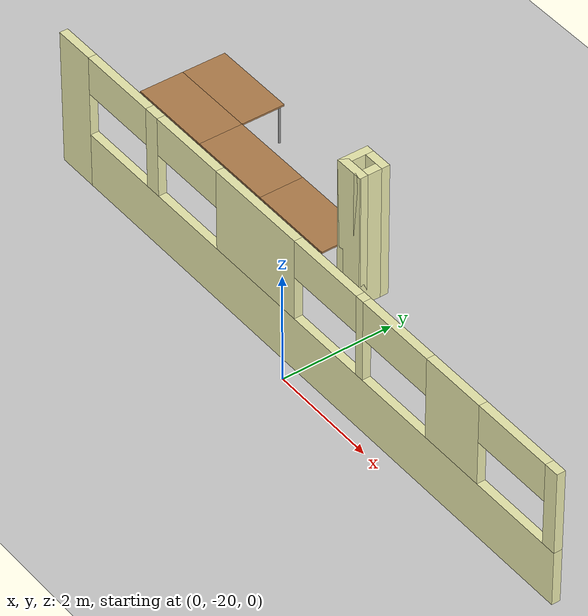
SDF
<sdf version="1.6">
 <world name="default">
  <model name="ground_plane">
   <static>1</static>
   <link name="link">
    <collision name="collision">
     <geometry><plane><normal>0 0 1</normal><size>100 100</size></plane></geometry>
     <surface><friction><ode><mu>100</mu><mu2>50</mu2></ode></friction></surface>
    </collision>
    <visual name="visual">
     <cast_shadows>0</cast_shadows>
     <geometry><plane><normal>0 0 1</normal><size>100 100</size></plane></geometry>
     <material>
      <script><uri>file://media/materials/scripts/gazebo.material</uri><name>Gazebo/Grey</name></script>
     </material>
    </visual>
   </link>
  </model>
  <model name="Building">
   <link name="Wall_0">
    <pose>0 -19.6636 0 0 -0 0</pose>
    <visual name="Wall_0_Visual_0">
     <pose>-5.69408 0 1.25 0 -0 0</pose>
     <geometry><box><size>0.761843 0.15 2.5</size></box></geometry>
     <material>
      <script><uri>file://media/materials/scripts/gazebo.material</uri><name>Gazebo/Grey</name></script>
      <ambient>0.92 0.92 0.68 1</ambient>
     </material>
     <meta><layer>0</layer></meta>
    </visual>
    <collision name="Wall_0_Collision_0">
     <geometry><box><size>0.761843 0.15 2.5</size></box></geometry>
     <pose>-5.69408 0 1.25 0 -0 0</pose>
    </collision>
    <visual name="Wall_0_Visual_1">
     <pose>0.380922 0 0.5 0 -0 0</pose>
     <geometry><box><size>11.3882 0.15 1</size></box></geometry>
     <material>
      <script><uri>file://media/materials/scripts/gazebo.material</uri><name>Gazebo/Grey</name></script>
      <ambient>0.92 0.92 0.68 1</ambient>
     </material>
     <meta><layer>0</layer></meta>
    </visual>
    <collision name="Wall_0_Collision_1">
     <geometry><box><size>11.3882 0.15 1</size></box></geometry>
     <pose>0.380922 0 0.5 0 -0 0</pose>
    </collision>
    <visual name="Wall_0_Visual_2">
     <pose>-3.66593 0 1.75 0 -0 0</pose>
     <geometry><box><size>0.294453 0.15 1.5</size></box></geometry>
     <material>
      <script><uri>file://media/materials/scripts/gazebo.material</uri><name>Gazebo/Grey</name></script>
      <ambient>0.92 0.92 0.68 1</ambient>
     </material>
     <meta><layer>0</layer></meta>
    </visual>
    <collision name="Wall_0_Collision_2">
     <geometry><box><size>0.294453 0.15 1.5</size></box></geometry>
     <pose>-3.66593 0 1.75 0 -0 0</pose>
    </collision>
    <visual name="Wall_0_Visual_3">
     <pose>-1.044 0 1.75 0 -0 0</pose>
     <geometry><box><size>1.94941 0.15 1.5</size></box></geometry>
     <material>
      <script><uri>file://media/materials/scripts/gazebo.material</uri><name>Gazebo/Grey</name></script>
      <ambient>0.92 0.92 0.68 1</ambient>
     </material>
     <meta><layer>0</layer></meta>
    </visual>
    <collision name="Wall_0_Collision_3">
     <geometry><box><size>1.94941 0.15 1.5</size></box></geometry>
     <pose>-1.044 0 1.75 0 -0 0</pose>
    </collision>
    <visual name="Wall_0_Visual_4">
     <pose>1.51332 0 1.75 0 -0 0</pose>
     <geometry><box><size>0.165232 0.15 1.5</size></box></geometry>
     <material>
      <script><uri>file://media/materials/scripts/gazebo.material</uri><name>Gazebo/Grey</name></script>
      <ambient>0.92 0.92 0.68 1</ambient>
     </material>
     <meta><layer>0</layer></meta>
    </visual>
    <collision name="Wall_0_Collision_4">
     <geometry><box><size>0.165232 0.15 1.5</size></box></geometry>
     <pose>1.51332 0 1.75 0 -0 0</pose>
    </collision>
    <visual name="Wall_0_Visual_5">
     <pose>3.70368 0 1.75 0 -0 0</pose>
     <geometry><box><size>1.21548 0.15 1.5</size></box></geometry>
     <material>
      <script><uri>file://media/materials/scripts/gazebo.material</uri><name>Gazebo/Grey</name></script>
      <ambient>0.92 0.92 0.68 1</ambient>
     </material>
     <meta><layer>0</layer></meta>
    </visual>
    <collision name="Wall_0_Collision_5">
     <geometry><box><size>1.21548 0.15 1.5</size></box></geometry>
     <pose>3.70368 0 1.75 0 -0 0</pose>
    </collision>
    <visual name="Wall_0_Visual_6">
     <pose>5.94321 0 1.75 0 -0 0</pose>
     <geometry><box><size>0.263587 0.15 1.5</size></box></geometry>
     <material>
      <script><uri>file://media/materials/scripts/gazebo.material</uri><name>Gazebo/Grey</name></script>
      <ambient>0.92 0.92 0.68 1</ambient>
     </material>
     <meta><layer>0</layer></meta>
    </visual>
    <collision name="Wall_0_Collision_6">
     <geometry><box><size>0.263587 0.15 1.5</size></box></geometry>
     <pose>5.94321 0 1.75 0 -0 0</pose>
    </collision>
    <visual name="Wall_0_Visual_7">
     <pose>-4.56316 0 2.15 0 -0 0</pose>
     <geometry><box><size>1.5 0.15 0.7</size></box></geometry>
     <material>
      <script><uri>file://media/materials/scripts/gazebo.material</uri><name>Gazebo/Grey</name></script>
      <ambient>0.92 0.92 0.68 1</ambient>
     </material>
     <meta><layer>0</layer></meta>
    </visual>
    <collision name="Wall_0_Collision_7">
     <geometry><box><size>1.5 0.15 0.7</size></box></geometry>
     <pose>-4.56316 0 2.15 0 -0 0</pose>
    </collision>
    <visual name="Wall_0_Visual_8">
     <pose>-2.7687 0 2.15 0 -0 0</pose>
     <geometry><box><size>1.5 0.15 0.7</size></box></geometry>
     <material>
      <script><uri>file://media/materials/scripts/gazebo.material</uri><name>Gazebo/Grey</name></script>
      <ambient>0.92 0.92 0.68 1</ambient>
     </material>
     <meta><layer>0</layer></meta>
    </visual>
    <collision name="Wall_0_Collision_8">
     <geometry><box><size>1.5 0.15 0.7</size></box></geometry>
     <pose>-2.7687 0 2.15 0 -0 0</pose>
    </collision>
    <visual name="Wall_0_Visual_9">
     <pose>0.680705 0 2.15 0 -0 0</pose>
     <geometry><box><size>1.5 0.15 0.7</size></box></geometry>
     <material>
      <script><uri>file://media/materials/scripts/gazebo.material</uri><name>Gazebo/Grey</name></script>
      <ambient>0.92 0.92 0.68 1</ambient>
     </material>
     <meta><layer>0</layer></meta>
    </visual>
    <collision name="Wall_0_Collision_9">
     <geometry><box><size>1.5 0.15 0.7</size></box></geometry>
     <pose>0.680705 0 2.15 0 -0 0</pose>
    </collision>
    <visual name="Wall_0_Visual_10">
     <pose>2.34594 0 2.15 0 -0 0</pose>
     <geometry><box><size>1.5 0.15 0.7</size></box></geometry>
     <material>
      <script><uri>file://media/materials/scripts/gazebo.material</uri><name>Gazebo/Grey</name></script>
      <ambient>0.92 0.92 0.68 1</ambient>
     </material>
     <meta><layer>0</layer></meta>
    </visual>
    <collision name="Wall_0_Collision_10">
     <geometry><box><size>1.5 0.15 0.7</size></box></geometry>
     <pose>2.34594 0 2.15 0 -0 0</pose>
    </collision>
    <visual name="Wall_0_Visual_11">
     <pose>5.06141 0 2.15 0 -0 0</pose>
     <geometry><box><size>1.5 0.15 0.7</size></box></geometry>
     <material>
      <script><uri>file://media/materials/scripts/gazebo.material</uri><name>Gazebo/Grey</name></script>
      <ambient>0.92 0.92 0.68 1</ambient>
     </material>
     <meta><layer>0</layer></meta>
    </visual>
    <collision name="Wall_0_Collision_11">
     <geometry><box><size>1.5 0.15 0.7</size></box></geometry>
     <pose>5.06141 0 2.15 0 -0 0</pose>
    </collision>
   </link>
   <link name="Wall_100">
    <collision name="Wall_100_Collision">
     <geometry><box><size>0.55 0.15 2.5</size></box></geometry>
     <pose>0 0 1.25 0 -0 0</pose>
    </collision>
    <visual name="Wall_100_Visual">
     <pose>0 0 1.25 0 -0 0</pose>
     <geometry><box><size>0.55 0.15 2.5</size></box></geometry>
     <material>
      <script><uri>file://media/materials/scripts/gazebo.material</uri><name>Gazebo/Grey</name></script>
      <ambient>0.92 0.92 0.68 1</ambient>
     </material>
     <meta><layer>0</layer></meta>
    </visual>
    <pose>-0.9 -18.0636 0 0 -0 0</pose>
   </link>
   <link name="Wall_102">
    <collision name="Wall_102_Collision">
     <geometry><box><size>0.55 0.15 2.5</size></box></geometry>
     <pose>0 0 1.25 0 -0 0</pose>
    </collision>
    <visual name="Wall_102_Visual">
     <pose>0 0 1.25 0 -0 0</pose>
     <geometry><box><size>0.55 0.15 2.5</size></box></geometry>
     <material>
      <script><uri>file://media/materials/scripts/gazebo.material</uri><name>Gazebo/Grey</name></script>
      <ambient>0.92 0.92 0.68 1</ambient>
     </material>
     <meta><layer>0</layer></meta>
    </visual>
    <pose>-0.9 -17.6636 0 0 -0 0</pose>
   </link>
   <link name="Wall_104">
    <collision name="Wall_104_Collision">
     <geometry><box><size>0.55 0.15 2.5</size></box></geometry>
     <pose>0 0 1.25 0 -0 0</pose>
    </collision>
    <visual name="Wall_104_Visual">
     <pose>0 0 1.25 0 -0 0</pose>
     <geometry><box><size>0.55 0.15 2.5</size></box></geometry>
     <material>
      <script><uri>file://media/materials/scripts/gazebo.material</uri><name>Gazebo/Grey</name></script>
      <ambient>0.92 0.92 0.68 1</ambient>
     </material>
     <meta><layer>0</layer></meta>
    </visual>
    <pose>-1.1 -17.8636 0 0 -0 1.5708</pose>
   </link>
   <link name="Wall_106">
    <collision name="Wall_106_Collision">
     <geometry><box><size>0.55 0.15 2.5</size></box></geometry>
     <pose>0 0 1.25 0 -0 0</pose>
    </collision>
    <visual name="Wall_106_Visual">
     <pose>0 0 1.25 0 -0 0</pose>
     <geometry><box><size>0.55 0.15 2.5</size></box></geometry>
     <material>
      <script><uri>file://media/materials/scripts/gazebo.material</uri><name>Gazebo/Grey</name></script>
      <ambient>0.92 0.92 0.68 1</ambient>
     </material>
     <meta><layer>0</layer></meta>
    </visual>
    <pose>-0.7 -17.8636 0 0 -0 1.5708</pose>
   </link>
   <static>1</static>
  </model>
  <model name="tablealt_0_clone_60">
   <link name="link">
    <inertial>
     <mass>1</mass>
     <inertia><ixx>1</ixx><ixy>0</ixy><ixz>0</ixz><iyy>1</iyy><iyz>0</iyz><izz>1</izz></inertia>
    </inertial>
    <visual name="back_right_leg">
     <pose>-0.68 -0.38 0.4 0 -0 0</pose>
     <geometry><cylinder><radius>0.02</radius><length>0.8</length></cylinder></geometry>
     <material>
      <script><uri>file://media/materials/scripts/gazebo.material</uri><name>Gazebo/Grey</name></script>
      <shader type="pixel"><normal_map>__default__</normal_map></shader>
      <ambient>0.3 0.3 0.3 1</ambient>
      <diffuse>0.7 0.7 0.7 1</diffuse>
      <specular>0.01 0.01 0.01 1</specular>
      <emissive>0 0 0 1</emissive>
     </material>
    </visual>
    <visual name="back_left_leg">
     <pose>-0.68 0.38 0.4 0 -0 0</pose>
     <geometry><cylinder><radius>0.02</radius><length>0.8</length></cylinder></geometry>
     <material>
      <script><uri>file://media/materials/scripts/gazebo.material</uri><name>Gazebo/Grey</name></script>
      <shader type="pixel"><normal_map>__default__</normal_map></shader>
      <ambient>0.3 0.3 0.3 1</ambient>
      <diffuse>0.7 0.7 0.7 1</diffuse>
      <specular>0.01 0.01 0.01 1</specular>
      <emissive>0 0 0 1</emissive>
     </material>
    </visual>
    <visual name="visual1">
     <pose>0 0 0.8 0 -0 0</pose>
     <geometry><box><size>1.57 0.8 0.03</size></box></geometry>
     <material>
      <script><uri>file://media/materials/scripts/gazebo.material</uri><name>Gazebo/Wood</name></script>
      <shader type="pixel"><normal_map>__default__</normal_map></shader>
      <ambient>0.92 0.92 0.68 1</ambient>
      <diffuse>1 1 1 1</diffuse>
      <specular>0.2 0.2 0.2 1</specular>
      <emissive>0 0 0 1</emissive>
     </material>
    </visual>
    <visual name="front_left_leg">
     <pose>0.68 0.38 0.4 0 -0 0</pose>
     <geometry><cylinder><radius>0.02</radius><length>0.8</length></cylinder></geometry>
     <material>
      <script><uri>file://media/materials/scripts/gazebo.material</uri><name>Gazebo/Grey</name></script>
      <shader type="pixel"><normal_map>__default__</normal_map></shader>
      <ambient>0.3 0.3 0.3 1</ambient>
      <diffuse>0.7 0.7 0.7 1</diffuse>
      <specular>0.01 0.01 0.01 1</specular>
      <emissive>0 0 0 1</emissive>
     </material>
    </visual>
    <visual name="front_right_leg">
     <pose>0.68 -0.38 0.4 0 -0 0</pose>
     <geometry><cylinder><radius>0.02</radius><length>0.8</length></cylinder></geometry>
     <material>
      <script><uri>file://media/materials/scripts/gazebo.material</uri><name>Gazebo/Grey</name></script>
      <shader type="pixel"><normal_map>__default__</normal_map></shader>
      <ambient>0.3 0.3 0.3 1</ambient>
      <diffuse>0.7 0.7 0.7 1</diffuse>
      <specular>0.01 0.01 0.01 1</specular>
      <emissive>0 0 0 1</emissive>
     </material>
    </visual>
    <collision name="front_right_leg">
     <pose>0.68 -0.38 0.4 0 -0 0</pose>
     <geometry><cylinder><radius>0.02</radius><length>0.8</length></cylinder></geometry>
     <surface>
      <friction>
       <ode><mu>1</mu><mu2>1</mu2><fdir1>0 0 0</fdir1><slip1>0</slip1><slip2>0</slip2></ode>
       <torsional>
        <coefficient>1</coefficient>
        <patch_radius>0</patch_radius>
        <surface_radius>0</surface_radius>
        <use_patch_radius>1</use_patch_radius>
        <ode><slip>0</slip></ode>
       </torsional>
      </friction>
      <bounce><restitution_coefficient>0</restitution_coefficient><threshold>1e+06</threshold></bounce>
      <contact>
       <collide_without_contact>0</collide_without_contact>
       <collide_without_contact_bitmask>1</collide_without_contact_bitmask>
       <collide_bitmask>1</collide_bitmask>
       <ode>
        <soft_cfm>0</soft_cfm>
        <soft_erp>0.2</soft_erp>
        <kp>1e+13</kp>
        <kd>1</kd>
        <max_vel>0.01</max_vel>
        <min_depth>0</min_depth>
       </ode>
       <bullet>
        <split_impulse>1</split_impulse>
        <split_impulse_penetration_threshold>-0.01</split_impulse_penetration_threshold>
        <soft_cfm>0</soft_cfm>
        <soft_erp>0.2</soft_erp>
        <kp>1e+13</kp>
        <kd>1</kd>
       </bullet>
      </contact>
     </surface>
    </collision>
    <collision name="surface">
     <pose>0 0 0.8 0 -0 0</pose>
     <geometry><box><size>1.5 0.8 0.03</size></box></geometry>
     <surface>
      <friction>
       <ode><mu>0.6</mu><mu2>0.6</mu2><fdir1>0 0 0</fdir1><slip1>0</slip1><slip2>0</slip2></ode>
       <torsional>
        <coefficient>1</coefficient>
        <patch_radius>0</patch_radius>
        <surface_radius>0</surface_radius>
        <use_patch_radius>1</use_patch_radius>
        <ode><slip>0</slip></ode>
       </torsional>
      </friction>
      <bounce><restitution_coefficient>0</restitution_coefficient><threshold>1e+06</threshold></bounce>
      <contact>
       <collide_without_contact>0</collide_without_contact>
       <collide_without_contact_bitmask>1</collide_without_contact_bitmask>
       <collide_bitmask>1</collide_bitmask>
       <ode>
        <soft_cfm>0</soft_cfm>
        <soft_erp>0.2</soft_erp>
        <kp>1e+13</kp>
        <kd>1</kd>
        <max_vel>0.01</max_vel>
        <min_depth>0</min_depth>
       </ode>
       <bullet>
        <split_impulse>1</split_impulse>
        <split_impulse_penetration_threshold>-0.01</split_impulse_penetration_threshold>
        <soft_cfm>0</soft_cfm>
        <soft_erp>0.2</soft_erp>
        <kp>1e+13</kp>
        <kd>1</kd>
       </bullet>
      </contact>
     </surface>
    </collision>
    <collision name="front_left_leg">
     <pose>0.68 0.38 0.4 0 -0 0</pose>
     <geometry><cylinder><radius>0.02</radius><length>0.8</length></cylinder></geometry>
     <surface>
      <friction>
       <ode><mu>1</mu><mu2>1</mu2><fdir1>0 0 0</fdir1><slip1>0</slip1><slip2>0</slip2></ode>
       <torsional>
        <coefficient>1</coefficient>
        <patch_radius>0</patch_radius>
        <surface_radius>0</surface_radius>
        <use_patch_radius>1</use_patch_radius>
        <ode><slip>0</slip></ode>
       </torsional>
      </friction>
      <bounce><restitution_coefficient>0</restitution_coefficient><threshold>1e+06</threshold></bounce>
      <contact>
       <collide_without_contact>0</collide_without_contact>
       <collide_without_contact_bitmask>1</collide_without_contact_bitmask>
       <collide_bitmask>1</collide_bitmask>
       <ode>
        <soft_cfm>0</soft_cfm>
        <soft_erp>0.2</soft_erp>
        <kp>1e+13</kp>
        <kd>1</kd>
        <max_vel>0.01</max_vel>
        <min_depth>0</min_depth>
       </ode>
       <bullet>
        <split_impulse>1</split_impulse>
        <split_impulse_penetration_threshold>-0.01</split_impulse_penetration_threshold>
        <soft_cfm>0</soft_cfm>
        <soft_erp>0.2</soft_erp>
        <kp>1e+13</kp>
        <kd>1</kd>
       </bullet>
      </contact>
     </surface>
    </collision>
    <collision name="back_left_leg">
     <pose>-0.68 0.38 0.4 0 -0 0</pose>
     <geometry><cylinder><radius>0.02</radius><length>0.8</length></cylinder></geometry>
     <surface>
      <friction>
       <ode><mu>1</mu><mu2>1</mu2><fdir1>0 0 0</fdir1><slip1>0</slip1><slip2>0</slip2></ode>
       <torsional>
        <coefficient>1</coefficient>
        <patch_radius>0</patch_radius>
        <surface_radius>0</surface_radius>
        <use_patch_radius>1</use_patch_radius>
        <ode><slip>0</slip></ode>
       </torsional>
      </friction>
      <bounce><restitution_coefficient>0</restitution_coefficient><threshold>1e+06</threshold></bounce>
      <contact>
       <collide_without_contact>0</collide_without_contact>
       <collide_without_contact_bitmask>1</collide_without_contact_bitmask>
       <collide_bitmask>1</collide_bitmask>
       <ode>
        <soft_cfm>0</soft_cfm>
        <soft_erp>0.2</soft_erp>
        <kp>1e+13</kp>
        <kd>1</kd>
        <max_vel>0.01</max_vel>
        <min_depth>0</min_depth>
       </ode>
       <bullet>
        <split_impulse>1</split_impulse>
        <split_impulse_penetration_threshold>-0.01</split_impulse_penetration_threshold>
        <soft_cfm>0</soft_cfm>
        <soft_erp>0.2</soft_erp>
        <kp>1e+13</kp>
        <kd>1</kd>
       </bullet>
      </contact>
     </surface>
    </collision>
    <collision name="back_right_leg">
     <pose>-0.68 -0.38 0.4 0 -0 0</pose>
     <geometry><cylinder><radius>0.02</radius><length>0.8</length></cylinder></geometry>
     <surface>
      <friction>
       <ode><mu>1</mu><mu2>1</mu2><fdir1>0 0 0</fdir1><slip1>0</slip1><slip2>0</slip2></ode>
       <torsional>
        <coefficient>1</coefficient>
        <patch_radius>0</patch_radius>
        <surface_radius>0</surface_radius>
        <use_patch_radius>1</use_patch_radius>
        <ode><slip>0</slip></ode>
       </torsional>
      </friction>
      <bounce><restitution_coefficient>0</restitution_coefficient><threshold>1e+06</threshold></bounce>
      <contact>
       <collide_without_contact>0</collide_without_contact>
       <collide_without_contact_bitmask>1</collide_without_contact_bitmask>
       <collide_bitmask>1</collide_bitmask>
       <ode>
        <soft_cfm>0</soft_cfm>
        <soft_erp>0.2</soft_erp>
        <kp>1e+13</kp>
        <kd>1</kd>
        <max_vel>0.01</max_vel>
        <min_depth>0</min_depth>
       </ode>
       <bullet>
        <split_impulse>1</split_impulse>
        <split_impulse_penetration_threshold>-0.01</split_impulse_penetration_threshold>
        <soft_cfm>0</soft_cfm>
        <soft_erp>0.2</soft_erp>
        <kp>1e+13</kp>
        <kd>1</kd>
       </bullet>
      </contact>
     </surface>
    </collision>
   </link>
   <static>1</static>
   <pose>-5.13 -18 0 0 -0 0</pose>
  </model>
  <model name="tablealt_0_clone_62">
   <link name="link">
    <inertial>
     <mass>1</mass>
     <inertia><ixx>1</ixx><ixy>0</ixy><ixz>0</ixz><iyy>1</iyy><iyz>0</iyz><izz>1</izz></inertia>
    </inertial>
    <visual name="back_right_leg">
     <pose>-0.68 -0.38 0.4 0 -0 0</pose>
     <geometry><cylinder><radius>0.02</radius><length>0.8</length></cylinder></geometry>
     <material>
      <script><uri>file://media/materials/scripts/gazebo.material</uri><name>Gazebo/Grey</name></script>
      <shader type="pixel"><normal_map>__default__</normal_map></shader>
      <ambient>0.3 0.3 0.3 1</ambient>
      <diffuse>0.7 0.7 0.7 1</diffuse>
      <specular>0.01 0.01 0.01 1</specular>
      <emissive>0 0 0 1</emissive>
     </material>
    </visual>
    <visual name="back_left_leg">
     <pose>-0.68 0.38 0.4 0 -0 0</pose>
     <geometry><cylinder><radius>0.02</radius><length>0.8</length></cylinder></geometry>
     <material>
      <script><uri>file://media/materials/scripts/gazebo.material</uri><name>Gazebo/Grey</name></script>
      <shader type="pixel"><normal_map>__default__</normal_map></shader>
      <ambient>0.3 0.3 0.3 1</ambient>
      <diffuse>0.7 0.7 0.7 1</diffuse>
      <specular>0.01 0.01 0.01 1</specular>
      <emissive>0 0 0 1</emissive>
     </material>
    </visual>
    <visual name="visual1">
     <pose>0 0 0.8 0 -0 0</pose>
     <geometry><box><size>1.57 0.8 0.03</size></box></geometry>
     <material>
      <script><uri>file://media/materials/scripts/gazebo.material</uri><name>Gazebo/Wood</name></script>
      <shader type="pixel"><normal_map>__default__</normal_map></shader>
      <ambient>0.92 0.92 0.68 1</ambient>
      <diffuse>1 1 1 1</diffuse>
      <specular>0.2 0.2 0.2 1</specular>
      <emissive>0 0 0 1</emissive>
     </material>
    </visual>
    <visual name="front_left_leg">
     <pose>0.68 0.38 0.4 0 -0 0</pose>
     <geometry><cylinder><radius>0.02</radius><length>0.8</length></cylinder></geometry>
     <material>
      <script><uri>file://media/materials/scripts/gazebo.material</uri><name>Gazebo/Grey</name></script>
      <shader type="pixel"><normal_map>__default__</normal_map></shader>
      <ambient>0.3 0.3 0.3 1</ambient>
      <diffuse>0.7 0.7 0.7 1</diffuse>
      <specular>0.01 0.01 0.01 1</specular>
      <emissive>0 0 0 1</emissive>
     </material>
    </visual>
    <visual name="front_right_leg">
     <pose>0.68 -0.38 0.4 0 -0 0</pose>
     <geometry><cylinder><radius>0.02</radius><length>0.8</length></cylinder></geometry>
     <material>
      <script><uri>file://media/materials/scripts/gazebo.material</uri><name>Gazebo/Grey</name></script>
      <shader type="pixel"><normal_map>__default__</normal_map></shader>
      <ambient>0.3 0.3 0.3 1</ambient>
      <diffuse>0.7 0.7 0.7 1</diffuse>
      <specular>0.01 0.01 0.01 1</specular>
      <emissive>0 0 0 1</emissive>
     </material>
    </visual>
    <collision name="front_right_leg">
     <pose>0.68 -0.38 0.4 0 -0 0</pose>
     <geometry><cylinder><radius>0.02</radius><length>0.8</length></cylinder></geometry>
     <surface>
      <friction>
       <ode><mu>1</mu><mu2>1</mu2><fdir1>0 0 0</fdir1><slip1>0</slip1><slip2>0</slip2></ode>
       <torsional>
        <coefficient>1</coefficient>
        <patch_radius>0</patch_radius>
        <surface_radius>0</surface_radius>
        <use_patch_radius>1</use_patch_radius>
        <ode><slip>0</slip></ode>
       </torsional>
      </friction>
      <bounce><restitution_coefficient>0</restitution_coefficient><threshold>1e+06</threshold></bounce>
      <contact>
       <collide_without_contact>0</collide_without_contact>
       <collide_without_contact_bitmask>1</collide_without_contact_bitmask>
       <collide_bitmask>1</collide_bitmask>
       <ode>
        <soft_cfm>0</soft_cfm>
        <soft_erp>0.2</soft_erp>
        <kp>1e+13</kp>
        <kd>1</kd>
        <max_vel>0.01</max_vel>
        <min_depth>0</min_depth>
       </ode>
       <bullet>
        <split_impulse>1</split_impulse>
        <split_impulse_penetration_threshold>-0.01</split_impulse_penetration_threshold>
        <soft_cfm>0</soft_cfm>
        <soft_erp>0.2</soft_erp>
        <kp>1e+13</kp>
        <kd>1</kd>
       </bullet>
      </contact>
     </surface>
    </collision>
    <collision name="surface">
     <pose>0 0 0.8 0 -0 0</pose>
     <geometry><box><size>1.5 0.8 0.03</size></box></geometry>
     <surface>
      <friction>
       <ode><mu>0.6</mu><mu2>0.6</mu2><fdir1>0 0 0</fdir1><slip1>0</slip1><slip2>0</slip2></ode>
       <torsional>
        <coefficient>1</coefficient>
        <patch_radius>0</patch_radius>
        <surface_radius>0</surface_radius>
        <use_patch_radius>1</use_patch_radius>
        <ode><slip>0</slip></ode>
       </torsional>
      </friction>
      <bounce><restitution_coefficient>0</restitution_coefficient><threshold>1e+06</threshold></bounce>
      <contact>
       <collide_without_contact>0</collide_without_contact>
       <collide_without_contact_bitmask>1</collide_without_contact_bitmask>
       <collide_bitmask>1</collide_bitmask>
       <ode>
        <soft_cfm>0</soft_cfm>
        <soft_erp>0.2</soft_erp>
        <kp>1e+13</kp>
        <kd>1</kd>
        <max_vel>0.01</max_vel>
        <min_depth>0</min_depth>
       </ode>
       <bullet>
        <split_impulse>1</split_impulse>
        <split_impulse_penetration_threshold>-0.01</split_impulse_penetration_threshold>
        <soft_cfm>0</soft_cfm>
        <soft_erp>0.2</soft_erp>
        <kp>1e+13</kp>
        <kd>1</kd>
       </bullet>
      </contact>
     </surface>
    </collision>
    <collision name="front_left_leg">
     <pose>0.68 0.38 0.4 0 -0 0</pose>
     <geometry><cylinder><radius>0.02</radius><length>0.8</length></cylinder></geometry>
     <surface>
      <friction>
       <ode><mu>1</mu><mu2>1</mu2><fdir1>0 0 0</fdir1><slip1>0</slip1><slip2>0</slip2></ode>
       <torsional>
        <coefficient>1</coefficient>
        <patch_radius>0</patch_radius>
        <surface_radius>0</surface_radius>
        <use_patch_radius>1</use_patch_radius>
        <ode><slip>0</slip></ode>
       </torsional>
      </friction>
      <bounce><restitution_coefficient>0</restitution_coefficient><threshold>1e+06</threshold></bounce>
      <contact>
       <collide_without_contact>0</collide_without_contact>
       <collide_without_contact_bitmask>1</collide_without_contact_bitmask>
       <collide_bitmask>1</collide_bitmask>
       <ode>
        <soft_cfm>0</soft_cfm>
        <soft_erp>0.2</soft_erp>
        <kp>1e+13</kp>
        <kd>1</kd>
        <max_vel>0.01</max_vel>
        <min_depth>0</min_depth>
       </ode>
       <bullet>
        <split_impulse>1</split_impulse>
        <split_impulse_penetration_threshold>-0.01</split_impulse_penetration_threshold>
        <soft_cfm>0</soft_cfm>
        <soft_erp>0.2</soft_erp>
        <kp>1e+13</kp>
        <kd>1</kd>
       </bullet>
      </contact>
     </surface>
    </collision>
    <collision name="back_left_leg">
     <pose>-0.68 0.38 0.4 0 -0 0</pose>
     <geometry><cylinder><radius>0.02</radius><length>0.8</length></cylinder></geometry>
     <surface>
      <friction>
       <ode><mu>1</mu><mu2>1</mu2><fdir1>0 0 0</fdir1><slip1>0</slip1><slip2>0</slip2></ode>
       <torsional>
        <coefficient>1</coefficient>
        <patch_radius>0</patch_radius>
        <surface_radius>0</surface_radius>
        <use_patch_radius>1</use_patch_radius>
        <ode><slip>0</slip></ode>
       </torsional>
      </friction>
      <bounce><restitution_coefficient>0</restitution_coefficient><threshold>1e+06</threshold></bounce>
      <contact>
       <collide_without_contact>0</collide_without_contact>
       <collide_without_contact_bitmask>1</collide_without_contact_bitmask>
       <collide_bitmask>1</collide_bitmask>
       <ode>
        <soft_cfm>0</soft_cfm>
        <soft_erp>0.2</soft_erp>
        <kp>1e+13</kp>
        <kd>1</kd>
        <max_vel>0.01</max_vel>
        <min_depth>0</min_depth>
       </ode>
       <bullet>
        <split_impulse>1</split_impulse>
        <split_impulse_penetration_threshold>-0.01</split_impulse_penetration_threshold>
        <soft_cfm>0</soft_cfm>
        <soft_erp>0.2</soft_erp>
        <kp>1e+13</kp>
        <kd>1</kd>
       </bullet>
      </contact>
     </surface>
    </collision>
    <collision name="back_right_leg">
     <pose>-0.68 -0.38 0.4 0 -0 0</pose>
     <geometry><cylinder><radius>0.02</radius><length>0.8</length></cylinder></geometry>
     <surface>
      <friction>
       <ode><mu>1</mu><mu2>1</mu2><fdir1>0 0 0</fdir1><slip1>0</slip1><slip2>0</slip2></ode>
       <torsional>
        <coefficient>1</coefficient>
        <patch_radius>0</patch_radius>
        <surface_radius>0</surface_radius>
        <use_patch_radius>1</use_patch_radius>
        <ode><slip>0</slip></ode>
       </torsional>
      </friction>
      <bounce><restitution_coefficient>0</restitution_coefficient><threshold>1e+06</threshold></bounce>
      <contact>
       <collide_without_contact>0</collide_without_contact>
       <collide_without_contact_bitmask>1</collide_without_contact_bitmask>
       <collide_bitmask>1</collide_bitmask>
       <ode>
        <soft_cfm>0</soft_cfm>
        <soft_erp>0.2</soft_erp>
        <kp>1e+13</kp>
        <kd>1</kd>
        <max_vel>0.01</max_vel>
        <min_depth>0</min_depth>
       </ode>
       <bullet>
        <split_impulse>1</split_impulse>
        <split_impulse_penetration_threshold>-0.01</split_impulse_penetration_threshold>
        <soft_cfm>0</soft_cfm>
        <soft_erp>0.2</soft_erp>
        <kp>1e+13</kp>
        <kd>1</kd>
       </bullet>
      </contact>
     </surface>
    </collision>
   </link>
   <static>1</static>
   <pose>-1.99 -18 0 0 -0 0</pose>
  </model>
  <model name="tablealt_0_clone_63">
   <link name="link">
    <inertial>
     <mass>1</mass>
     <inertia><ixx>1</ixx><ixy>0</ixy><ixz>0</ixz><iyy>1</iyy><iyz>0</iyz><izz>1</izz></inertia>
    </inertial>
    <visual name="back_right_leg">
     <pose>-0.68 -0.38 0.4 0 -0 0</pose>
     <geometry><cylinder><radius>0.02</radius><length>0.8</length></cylinder></geometry>
     <material>
      <script><uri>file://media/materials/scripts/gazebo.material</uri><name>Gazebo/Grey</name></script>
      <shader type="pixel"><normal_map>__default__</normal_map></shader>
      <ambient>0.3 0.3 0.3 1</ambient>
      <diffuse>0.7 0.7 0.7 1</diffuse>
      <specular>0.01 0.01 0.01 1</specular>
      <emissive>0 0 0 1</emissive>
     </material>
    </visual>
    <visual name="back_left_leg">
     <pose>-0.68 0.38 0.4 0 -0 0</pose>
     <geometry><cylinder><radius>0.02</radius><length>0.8</length></cylinder></geometry>
     <material>
      <script><uri>file://media/materials/scripts/gazebo.material</uri><name>Gazebo/Grey</name></script>
      <shader type="pixel"><normal_map>__default__</normal_map></shader>
      <ambient>0.3 0.3 0.3 1</ambient>
      <diffuse>0.7 0.7 0.7 1</diffuse>
      <specular>0.01 0.01 0.01 1</specular>
      <emissive>0 0 0 1</emissive>
     </material>
    </visual>
    <visual name="visual1">
     <pose>0 0 0.8 0 -0 0</pose>
     <geometry><box><size>1.57 0.8 0.03</size></box></geometry>
     <material>
      <script><uri>file://media/materials/scripts/gazebo.material</uri><name>Gazebo/Wood</name></script>
      <shader type="pixel"><normal_map>__default__</normal_map></shader>
      <ambient>0.92 0.92 0.68 1</ambient>
      <diffuse>1 1 1 1</diffuse>
      <specular>0.2 0.2 0.2 1</specular>
      <emissive>0 0 0 1</emissive>
     </material>
    </visual>
    <visual name="front_left_leg">
     <pose>0.68 0.38 0.4 0 -0 0</pose>
     <geometry><cylinder><radius>0.02</radius><length>0.8</length></cylinder></geometry>
     <material>
      <script><uri>file://media/materials/scripts/gazebo.material</uri><name>Gazebo/Grey</name></script>
      <shader type="pixel"><normal_map>__default__</normal_map></shader>
      <ambient>0.3 0.3 0.3 1</ambient>
      <diffuse>0.7 0.7 0.7 1</diffuse>
      <specular>0.01 0.01 0.01 1</specular>
      <emissive>0 0 0 1</emissive>
     </material>
    </visual>
    <visual name="front_right_leg">
     <pose>0.68 -0.38 0.4 0 -0 0</pose>
     <geometry><cylinder><radius>0.02</radius><length>0.8</length></cylinder></geometry>
     <material>
      <script><uri>file://media/materials/scripts/gazebo.material</uri><name>Gazebo/Grey</name></script>
      <shader type="pixel"><normal_map>__default__</normal_map></shader>
      <ambient>0.3 0.3 0.3 1</ambient>
      <diffuse>0.7 0.7 0.7 1</diffuse>
      <specular>0.01 0.01 0.01 1</specular>
      <emissive>0 0 0 1</emissive>
     </material>
    </visual>
    <collision name="front_right_leg">
     <pose>0.68 -0.38 0.4 0 -0 0</pose>
     <geometry><cylinder><radius>0.02</radius><length>0.8</length></cylinder></geometry>
     <surface>
      <friction>
       <ode><mu>1</mu><mu2>1</mu2><fdir1>0 0 0</fdir1><slip1>0</slip1><slip2>0</slip2></ode>
       <torsional>
        <coefficient>1</coefficient>
        <patch_radius>0</patch_radius>
        <surface_radius>0</surface_radius>
        <use_patch_radius>1</use_patch_radius>
        <ode><slip>0</slip></ode>
       </torsional>
      </friction>
      <bounce><restitution_coefficient>0</restitution_coefficient><threshold>1e+06</threshold></bounce>
      <contact>
       <collide_without_contact>0</collide_without_contact>
       <collide_without_contact_bitmask>1</collide_without_contact_bitmask>
       <collide_bitmask>1</collide_bitmask>
       <ode>
        <soft_cfm>0</soft_cfm>
        <soft_erp>0.2</soft_erp>
        <kp>1e+13</kp>
        <kd>1</kd>
        <max_vel>0.01</max_vel>
        <min_depth>0</min_depth>
       </ode>
       <bullet>
        <split_impulse>1</split_impulse>
        <split_impulse_penetration_threshold>-0.01</split_impulse_penetration_threshold>
        <soft_cfm>0</soft_cfm>
        <soft_erp>0.2</soft_erp>
        <kp>1e+13</kp>
        <kd>1</kd>
       </bullet>
      </contact>
     </surface>
    </collision>
    <collision name="surface">
     <pose>0 0 0.8 0 -0 0</pose>
     <geometry><box><size>1.5 0.8 0.03</size></box></geometry>
     <surface>
      <friction>
       <ode><mu>0.6</mu><mu2>0.6</mu2><fdir1>0 0 0</fdir1><slip1>0</slip1><slip2>0</slip2></ode>
       <torsional>
        <coefficient>1</coefficient>
        <patch_radius>0</patch_radius>
        <surface_radius>0</surface_radius>
        <use_patch_radius>1</use_patch_radius>
        <ode><slip>0</slip></ode>
       </torsional>
      </friction>
      <bounce><restitution_coefficient>0</restitution_coefficient><threshold>1e+06</threshold></bounce>
      <contact>
       <collide_without_contact>0</collide_without_contact>
       <collide_without_contact_bitmask>1</collide_without_contact_bitmask>
       <collide_bitmask>1</collide_bitmask>
       <ode>
        <soft_cfm>0</soft_cfm>
        <soft_erp>0.2</soft_erp>
        <kp>1e+13</kp>
        <kd>1</kd>
        <max_vel>0.01</max_vel>
        <min_depth>0</min_depth>
       </ode>
       <bullet>
        <split_impulse>1</split_impulse>
        <split_impulse_penetration_threshold>-0.01</split_impulse_penetration_threshold>
        <soft_cfm>0</soft_cfm>
        <soft_erp>0.2</soft_erp>
        <kp>1e+13</kp>
        <kd>1</kd>
       </bullet>
      </contact>
     </surface>
    </collision>
    <collision name="front_left_leg">
     <pose>0.68 0.38 0.4 0 -0 0</pose>
     <geometry><cylinder><radius>0.02</radius><length>0.8</length></cylinder></geometry>
     <surface>
      <friction>
       <ode><mu>1</mu><mu2>1</mu2><fdir1>0 0 0</fdir1><slip1>0</slip1><slip2>0</slip2></ode>
       <torsional>
        <coefficient>1</coefficient>
        <patch_radius>0</patch_radius>
        <surface_radius>0</surface_radius>
        <use_patch_radius>1</use_patch_radius>
        <ode><slip>0</slip></ode>
       </torsional>
      </friction>
      <bounce><restitution_coefficient>0</restitution_coefficient><threshold>1e+06</threshold></bounce>
      <contact>
       <collide_without_contact>0</collide_without_contact>
       <collide_without_contact_bitmask>1</collide_without_contact_bitmask>
       <collide_bitmask>1</collide_bitmask>
       <ode>
        <soft_cfm>0</soft_cfm>
        <soft_erp>0.2</soft_erp>
        <kp>1e+13</kp>
        <kd>1</kd>
        <max_vel>0.01</max_vel>
        <min_depth>0</min_depth>
       </ode>
       <bullet>
        <split_impulse>1</split_impulse>
        <split_impulse_penetration_threshold>-0.01</split_impulse_penetration_threshold>
        <soft_cfm>0</soft_cfm>
        <soft_erp>0.2</soft_erp>
        <kp>1e+13</kp>
        <kd>1</kd>
       </bullet>
      </contact>
     </surface>
    </collision>
    <collision name="back_left_leg">
     <pose>-0.68 0.38 0.4 0 -0 0</pose>
     <geometry><cylinder><radius>0.02</radius><length>0.8</length></cylinder></geometry>
     <surface>
      <friction>
       <ode><mu>1</mu><mu2>1</mu2><fdir1>0 0 0</fdir1><slip1>0</slip1><slip2>0</slip2></ode>
       <torsional>
        <coefficient>1</coefficient>
        <patch_radius>0</patch_radius>
        <surface_radius>0</surface_radius>
        <use_patch_radius>1</use_patch_radius>
        <ode><slip>0</slip></ode>
       </torsional>
      </friction>
      <bounce><restitution_coefficient>0</restitution_coefficient><threshold>1e+06</threshold></bounce>
      <contact>
       <collide_without_contact>0</collide_without_contact>
       <collide_without_contact_bitmask>1</collide_without_contact_bitmask>
       <collide_bitmask>1</collide_bitmask>
       <ode>
        <soft_cfm>0</soft_cfm>
        <soft_erp>0.2</soft_erp>
        <kp>1e+13</kp>
        <kd>1</kd>
        <max_vel>0.01</max_vel>
        <min_depth>0</min_depth>
       </ode>
       <bullet>
        <split_impulse>1</split_impulse>
        <split_impulse_penetration_threshold>-0.01</split_impulse_penetration_threshold>
        <soft_cfm>0</soft_cfm>
        <soft_erp>0.2</soft_erp>
        <kp>1e+13</kp>
        <kd>1</kd>
       </bullet>
      </contact>
     </surface>
    </collision>
    <collision name="back_right_leg">
     <pose>-0.68 -0.38 0.4 0 -0 0</pose>
     <geometry><cylinder><radius>0.02</radius><length>0.8</length></cylinder></geometry>
     <surface>
      <friction>
       <ode><mu>1</mu><mu2>1</mu2><fdir1>0 0 0</fdir1><slip1>0</slip1><slip2>0</slip2></ode>
       <torsional>
        <coefficient>1</coefficient>
        <patch_radius>0</patch_radius>
        <surface_radius>0</surface_radius>
        <use_patch_radius>1</use_patch_radius>
        <ode><slip>0</slip></ode>
       </torsional>
      </friction>
      <bounce><restitution_coefficient>0</restitution_coefficient><threshold>1e+06</threshold></bounce>
      <contact>
       <collide_without_contact>0</collide_without_contact>
       <collide_without_contact_bitmask>1</collide_without_contact_bitmask>
       <collide_bitmask>1</collide_bitmask>
       <ode>
        <soft_cfm>0</soft_cfm>
        <soft_erp>0.2</soft_erp>
        <kp>1e+13</kp>
        <kd>1</kd>
        <max_vel>0.01</max_vel>
        <min_depth>0</min_depth>
       </ode>
       <bullet>
        <split_impulse>1</split_impulse>
        <split_impulse_penetration_threshold>-0.01</split_impulse_penetration_threshold>
        <soft_cfm>0</soft_cfm>
        <soft_erp>0.2</soft_erp>
        <kp>1e+13</kp>
        <kd>1</kd>
       </bullet>
      </contact>
     </surface>
    </collision>
   </link>
   <static>1</static>
   <pose>-5.13 -17.2 0 0 -0 0</pose>
  </model>
  <model name="tablealt_0_clone_64">
   <link name="link">
    <inertial>
     <mass>1</mass>
     <inertia><ixx>1</ixx><ixy>0</ixy><ixz>0</ixz><iyy>1</iyy><iyz>0</iyz><izz>1</izz></inertia>
    </inertial>
    <visual name="back_right_leg">
     <pose>-0.68 -0.38 0.4 0 -0 0</pose>
     <geometry><cylinder><radius>0.02</radius><length>0.8</length></cylinder></geometry>
     <material>
      <script><uri>file://media/materials/scripts/gazebo.material</uri><name>Gazebo/Grey</name></script>
      <shader type="pixel"><normal_map>__default__</normal_map></shader>
      <ambient>0.3 0.3 0.3 1</ambient>
      <diffuse>0.7 0.7 0.7 1</diffuse>
      <specular>0.01 0.01 0.01 1</specular>
      <emissive>0 0 0 1</emissive>
     </material>
    </visual>
    <visual name="back_left_leg">
     <pose>-0.68 0.38 0.4 0 -0 0</pose>
     <geometry><cylinder><radius>0.02</radius><length>0.8</length></cylinder></geometry>
     <material>
      <script><uri>file://media/materials/scripts/gazebo.material</uri><name>Gazebo/Grey</name></script>
      <shader type="pixel"><normal_map>__default__</normal_map></shader>
      <ambient>0.3 0.3 0.3 1</ambient>
      <diffuse>0.7 0.7 0.7 1</diffuse>
      <specular>0.01 0.01 0.01 1</specular>
      <emissive>0 0 0 1</emissive>
     </material>
    </visual>
    <visual name="visual1">
     <pose>0 0 0.8 0 -0 0</pose>
     <geometry><box><size>1.57 0.8 0.03</size></box></geometry>
     <material>
      <script><uri>file://media/materials/scripts/gazebo.material</uri><name>Gazebo/Wood</name></script>
      <shader type="pixel"><normal_map>__default__</normal_map></shader>
      <ambient>0.92 0.92 0.68 1</ambient>
      <diffuse>1 1 1 1</diffuse>
      <specular>0.2 0.2 0.2 1</specular>
      <emissive>0 0 0 1</emissive>
     </material>
    </visual>
    <visual name="front_left_leg">
     <pose>0.68 0.38 0.4 0 -0 0</pose>
     <geometry><cylinder><radius>0.02</radius><length>0.8</length></cylinder></geometry>
     <material>
      <script><uri>file://media/materials/scripts/gazebo.material</uri><name>Gazebo/Grey</name></script>
      <shader type="pixel"><normal_map>__default__</normal_map></shader>
      <ambient>0.3 0.3 0.3 1</ambient>
      <diffuse>0.7 0.7 0.7 1</diffuse>
      <specular>0.01 0.01 0.01 1</specular>
      <emissive>0 0 0 1</emissive>
     </material>
    </visual>
    <visual name="front_right_leg">
     <pose>0.68 -0.38 0.4 0 -0 0</pose>
     <geometry><cylinder><radius>0.02</radius><length>0.8</length></cylinder></geometry>
     <material>
      <script><uri>file://media/materials/scripts/gazebo.material</uri><name>Gazebo/Grey</name></script>
      <shader type="pixel"><normal_map>__default__</normal_map></shader>
      <ambient>0.3 0.3 0.3 1</ambient>
      <diffuse>0.7 0.7 0.7 1</diffuse>
      <specular>0.01 0.01 0.01 1</specular>
      <emissive>0 0 0 1</emissive>
     </material>
    </visual>
    <collision name="front_right_leg">
     <pose>0.68 -0.38 0.4 0 -0 0</pose>
     <geometry><cylinder><radius>0.02</radius><length>0.8</length></cylinder></geometry>
     <surface>
      <friction>
       <ode><mu>1</mu><mu2>1</mu2><fdir1>0 0 0</fdir1><slip1>0</slip1><slip2>0</slip2></ode>
       <torsional>
        <coefficient>1</coefficient>
        <patch_radius>0</patch_radius>
        <surface_radius>0</surface_radius>
        <use_patch_radius>1</use_patch_radius>
        <ode><slip>0</slip></ode>
       </torsional>
      </friction>
      <bounce><restitution_coefficient>0</restitution_coefficient><threshold>1e+06</threshold></bounce>
      <contact>
       <collide_without_contact>0</collide_without_contact>
       <collide_without_contact_bitmask>1</collide_without_contact_bitmask>
       <collide_bitmask>1</collide_bitmask>
       <ode>
        <soft_cfm>0</soft_cfm>
        <soft_erp>0.2</soft_erp>
        <kp>1e+13</kp>
        <kd>1</kd>
        <max_vel>0.01</max_vel>
        <min_depth>0</min_depth>
       </ode>
       <bullet>
        <split_impulse>1</split_impulse>
        <split_impulse_penetration_threshold>-0.01</split_impulse_penetration_threshold>
        <soft_cfm>0</soft_cfm>
        <soft_erp>0.2</soft_erp>
        <kp>1e+13</kp>
        <kd>1</kd>
       </bullet>
      </contact>
     </surface>
    </collision>
    <collision name="surface">
     <pose>0 0 0.8 0 -0 0</pose>
     <geometry><box><size>1.5 0.8 0.03</size></box></geometry>
     <surface>
      <friction>
       <ode><mu>0.6</mu><mu2>0.6</mu2><fdir1>0 0 0</fdir1><slip1>0</slip1><slip2>0</slip2></ode>
       <torsional>
        <coefficient>1</coefficient>
        <patch_radius>0</patch_radius>
        <surface_radius>0</surface_radius>
        <use_patch_radius>1</use_patch_radius>
        <ode><slip>0</slip></ode>
       </torsional>
      </friction>
      <bounce><restitution_coefficient>0</restitution_coefficient><threshold>1e+06</threshold></bounce>
      <contact>
       <collide_without_contact>0</collide_without_contact>
       <collide_without_contact_bitmask>1</collide_without_contact_bitmask>
       <collide_bitmask>1</collide_bitmask>
       <ode>
        <soft_cfm>0</soft_cfm>
        <soft_erp>0.2</soft_erp>
        <kp>1e+13</kp>
        <kd>1</kd>
        <max_vel>0.01</max_vel>
        <min_depth>0</min_depth>
       </ode>
       <bullet>
        <split_impulse>1</split_impulse>
        <split_impulse_penetration_threshold>-0.01</split_impulse_penetration_threshold>
        <soft_cfm>0</soft_cfm>
        <soft_erp>0.2</soft_erp>
        <kp>1e+13</kp>
        <kd>1</kd>
       </bullet>
      </contact>
     </surface>
    </collision>
    <collision name="front_left_leg">
     <pose>0.68 0.38 0.4 0 -0 0</pose>
     <geometry><cylinder><radius>0.02</radius><length>0.8</length></cylinder></geometry>
     <surface>
      <friction>
       <ode><mu>1</mu><mu2>1</mu2><fdir1>0 0 0</fdir1><slip1>0</slip1><slip2>0</slip2></ode>
       <torsional>
        <coefficient>1</coefficient>
        <patch_radius>0</patch_radius>
        <surface_radius>0</surface_radius>
        <use_patch_radius>1</use_patch_radius>
        <ode><slip>0</slip></ode>
       </torsional>
      </friction>
      <bounce><restitution_coefficient>0</restitution_coefficient><threshold>1e+06</threshold></bounce>
      <contact>
       <collide_without_contact>0</collide_without_contact>
       <collide_without_contact_bitmask>1</collide_without_contact_bitmask>
       <collide_bitmask>1</collide_bitmask>
       <ode>
        <soft_cfm>0</soft_cfm>
        <soft_erp>0.2</soft_erp>
        <kp>1e+13</kp>
        <kd>1</kd>
        <max_vel>0.01</max_vel>
        <min_depth>0</min_depth>
       </ode>
       <bullet>
        <split_impulse>1</split_impulse>
        <split_impulse_penetration_threshold>-0.01</split_impulse_penetration_threshold>
        <soft_cfm>0</soft_cfm>
        <soft_erp>0.2</soft_erp>
        <kp>1e+13</kp>
        <kd>1</kd>
       </bullet>
      </contact>
     </surface>
    </collision>
    <collision name="back_left_leg">
     <pose>-0.68 0.38 0.4 0 -0 0</pose>
     <geometry><cylinder><radius>0.02</radius><length>0.8</length></cylinder></geometry>
     <surface>
      <friction>
       <ode><mu>1</mu><mu2>1</mu2><fdir1>0 0 0</fdir1><slip1>0</slip1><slip2>0</slip2></ode>
       <torsional>
        <coefficient>1</coefficient>
        <patch_radius>0</patch_radius>
        <surface_radius>0</surface_radius>
        <use_patch_radius>1</use_patch_radius>
        <ode><slip>0</slip></ode>
       </torsional>
      </friction>
      <bounce><restitution_coefficient>0</restitution_coefficient><threshold>1e+06</threshold></bounce>
      <contact>
       <collide_without_contact>0</collide_without_contact>
       <collide_without_contact_bitmask>1</collide_without_contact_bitmask>
       <collide_bitmask>1</collide_bitmask>
       <ode>
        <soft_cfm>0</soft_cfm>
        <soft_erp>0.2</soft_erp>
        <kp>1e+13</kp>
        <kd>1</kd>
        <max_vel>0.01</max_vel>
        <min_depth>0</min_depth>
       </ode>
       <bullet>
        <split_impulse>1</split_impulse>
        <split_impulse_penetration_threshold>-0.01</split_impulse_penetration_threshold>
        <soft_cfm>0</soft_cfm>
        <soft_erp>0.2</soft_erp>
        <kp>1e+13</kp>
        <kd>1</kd>
       </bullet>
      </contact>
     </surface>
    </collision>
    <collision name="back_right_leg">
     <pose>-0.68 -0.38 0.4 0 -0 0</pose>
     <geometry><cylinder><radius>0.02</radius><length>0.8</length></cylinder></geometry>
     <surface>
      <friction>
       <ode><mu>1</mu><mu2>1</mu2><fdir1>0 0 0</fdir1><slip1>0</slip1><slip2>0</slip2></ode>
       <torsional>
        <coefficient>1</coefficient>
        <patch_radius>0</patch_radius>
        <surface_radius>0</surface_radius>
        <use_patch_radius>1</use_patch_radius>
        <ode><slip>0</slip></ode>
       </torsional>
      </friction>
      <bounce><restitution_coefficient>0</restitution_coefficient><threshold>1e+06</threshold></bounce>
      <contact>
       <collide_without_contact>0</collide_without_contact>
       <collide_without_contact_bitmask>1</collide_without_contact_bitmask>
       <collide_bitmask>1</collide_bitmask>
       <ode>
        <soft_cfm>0</soft_cfm>
        <soft_erp>0.2</soft_erp>
        <kp>1e+13</kp>
        <kd>1</kd>
        <max_vel>0.01</max_vel>
        <min_depth>0</min_depth>
       </ode>
       <bullet>
        <split_impulse>1</split_impulse>
        <split_impulse_penetration_threshold>-0.01</split_impulse_penetration_threshold>
        <soft_cfm>0</soft_cfm>
        <soft_erp>0.2</soft_erp>
        <kp>1e+13</kp>
        <kd>1</kd>
       </bullet>
      </contact>
     </surface>
    </collision>
   </link>
   <static>1</static>
   <pose>-3.56 -18 0 0 -0 0</pose>
  </model>
 </world>
</sdf>
